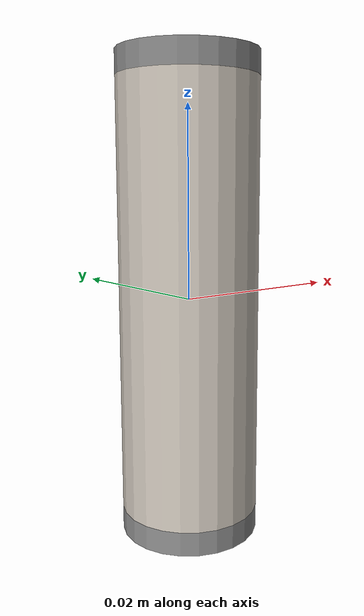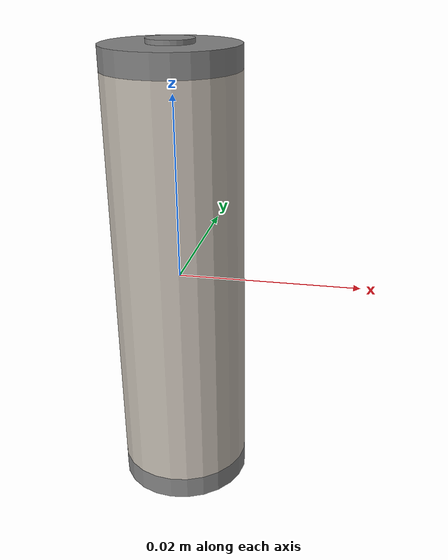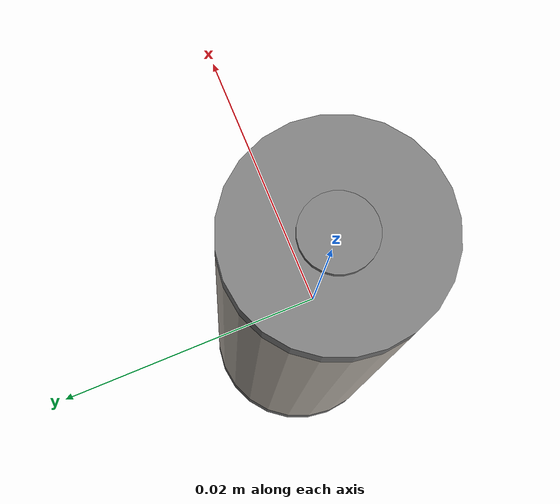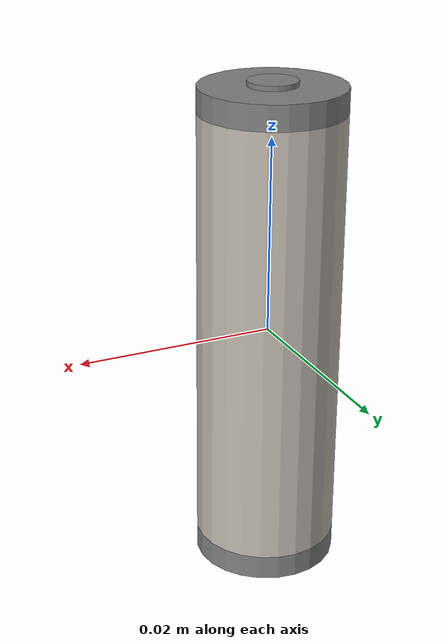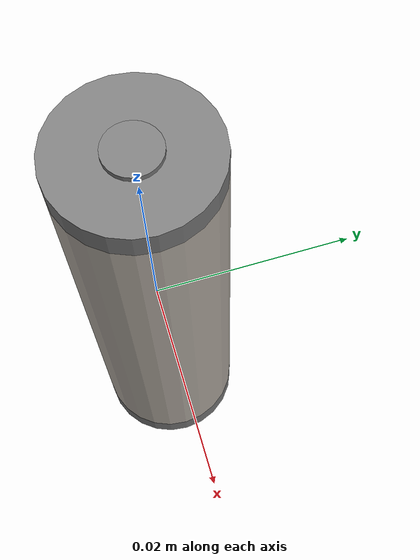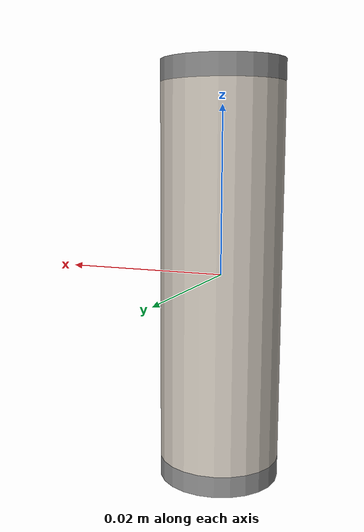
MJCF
<mujoco model="battery_AA">
    <asset>
        <!-- Texture definition -->
        <texture name="battery_texture" type="2d" file="dated_image.png" />
        <material name="battery_material" texture="battery_texture" texrepeat="1 3" texuniform="true" />
    </asset>

    <worldbody>
        <body name="battery_AA" pos="0 0 0">
            <!-- Main green body with texture -->
            <geom name="battery_body" type="cylinder" pos="0 0 0" size="0.00725 0.0225"
                  material="battery_material"
                  mass="0.023" friction="1 0.005 0.0001" condim="4"/>

            <!-- Bottom grey cap -->
            <geom name="battery_bottom_cap" type="cylinder" pos="0 0 -0.02375" size="0.00725 0.00125"
                  rgba="0.5 0.5 0.5 1" mass="0.003" friction="1 0.005 0.0001" condim="4"/>

            <!-- Top grey cap -->
            <geom name="battery_top_cap" type="cylinder" pos="0 0 0.02375" size="0.00725 0.00125"
                  rgba="0.5 0.5 0.5 1" mass="0.003" friction="1 0.005 0.0001" condim="4"/>

            <!-- Positive bump on top -->
            <geom name="battery_positive_bump" type="cylinder" pos="0 0 0.02525" size="0.0025 0.00025"
                  rgba="0.5 0.5 0.5 1" mass="0.001" friction="1 0.005 0.0001" condim="4"/>

        </body>
    </worldbody>
</mujoco>
